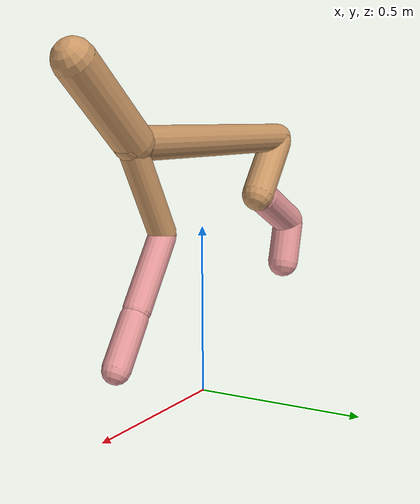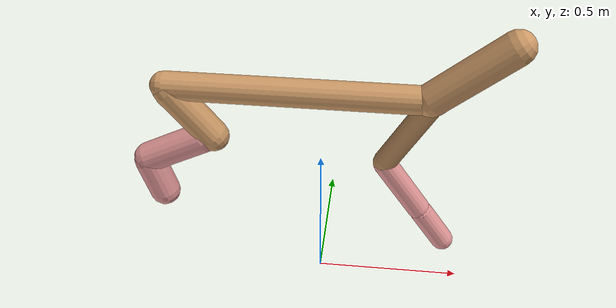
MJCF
<mujoco model="cheetah">
  <compiler angle="radian" coordinate="local" inertiafromgeom="true" settotalmass="14" />
  <default>
    <joint armature=".1" damping=".01" limited="true" solimplimit="0 .8 .03" solreflimit=".02 1" stiffness="8" />
    <geom conaffinity="0" condim="3" contype="1" friction="0.8 .1 .1" rgba="0.8 0.6 .4 1" solimp="0.0 0.8 0.01" solref="0.02 1" />
    <motor ctrllimited="true" ctrlrange="-1 1" />
  </default>
  <size nstack="300000" nuser_geom="1" />
  <option gravity="0 0 -9.81" timestep="0.01" />
  <worldbody>
    <body name="torso" pos="0.0 0.0 0.7505371202275777">
      <joint armature="0" axis="1 0 0" damping="0" limited="false" name="ignorex" pos="0 0 0" stiffness="0" type="slide" />
      <joint armature="0" axis="0 0 1" damping="0" limited="false" name="ignorez" pos="0 0 0" stiffness="0" type="slide" />
      <joint armature="0" axis="0 1 0" damping="0" limited="false" name="ignorey" pos="0 0 0" stiffness="0" type="hinge" />
      <geom fromto="-0.5 0.0 0.0 0.3549233037828169 0.0 0.0" name="torso" size="0.04673686873313181" type="capsule" />
      <geom axisangle="0 1 0 .87" name="head" pos="0.45492330378281687 0.0 0.1" size="0.05526845260917364 0.15" type="capsule" />

      <body name="bthigh" pos="-.5 0 0">
        <joint axis="0 1 0" damping="6" name="bthigh" pos="0 0 0" range="-.52 1.05" stiffness="240" type="hinge" />
        <geom axisangle="0 1 0 -3.8" name="bthigh" pos="0.07717712962243929 0.0 -0.10033026850917108" size="0.052484957129697835 0.10756770940740035" type="capsule" />
        <body name="bshin" pos="0.11435425924487858 0.0 -0.19066053701834215">
          <joint axis="0 1 0" damping="4.5" name="bshin" pos="0 0 0" range="-.785 .785" stiffness="180" type="hinge" />
          <geom axisangle="0 1 0 -2.03" name="bshin" pos="-0.10536504290265711 0.0 -0.052682521451328554" rgba="0.9 0.6 0.6 1" size="0.052484957129697835 0.11127694076627621" type="capsule" />
          <body name="bfoot" pos="-0.21073008580531422 0.0 -0.10536504290265711">
            <joint axis="0 1 0" damping="3" name="bfoot" pos="0 0 0" range="-.4 .785" stiffness="120" type="hinge" />
            <geom axisangle="0 1 0 -.27" name="bfoot" pos="0.02282999860831054 0.0 -0.0738169955002041" rgba="0.9 0.6 0.6 1" size="0.052484957129697835 0.06973354954686643" type="capsule" />
            <inertial mass="10" />
          </body>
        </body>
      </body>
      <body name="fthigh" pos="0.3549233037828169 0.0 0.0">
        <joint axis="0 1 0" damping="4.5" name="fthigh" pos="0 0 0" range="-1.5 0.8" stiffness="180" type="hinge" />
        <geom axisangle="0 1 0 .52" name="fthigh" pos="-0.07354261229004372 0.0 -0.12607304964007493" size="0.03898355804153636 0.1400307918308241" type="capsule" />
        <body name="fshin" pos="-0.14708522458008744 0.0 -0.25214609928014986">
          <joint axis="0 1 0" damping="3" name="fshin" pos="0 0 0" range="-1.2 1.1" stiffness="120" type="hinge" />
          <geom axisangle="0 1 0 -.6" name="fshin" pos="0.06828078942494226 0.0 -0.09454263151145852" rgba="0.9 0.6 0.6 1" size="0.03898355804153636 0.11160348822607032" type="capsule" />
          <body name="ffoot" pos="0.1365615788498845 0.0 -0.18908526302291703">
            <joint axis="0 1 0" damping="1.5" name="ffoot" pos="0 0 0" range="-3.1 -0.3" stiffness="60" type="hinge" />
            <geom axisangle="0 1 0 -.6" name="ffoot" pos="0.04700102845024372 0.0 -0.07311271092260134" rgba="0.9 0.6 0.6 1" size="0.03898355804153636 0.07370041675306531" type="capsule" />
            <inertial mass="10" />
          </body>
        </body>
      </body>
    </body>
  </worldbody>
  <actuator>
    <motor gear="120" joint="bthigh" name="bthigh" />
    <motor gear="90" joint="bshin" name="bshin" />
    <motor gear="60" joint="bfoot" name="bfoot" />
    <motor gear="120" joint="fthigh" name="fthigh" />
    <motor gear="60" joint="fshin" name="fshin" />
    <motor gear="30" joint="ffoot" name="ffoot" />
  </actuator>
</mujoco>
